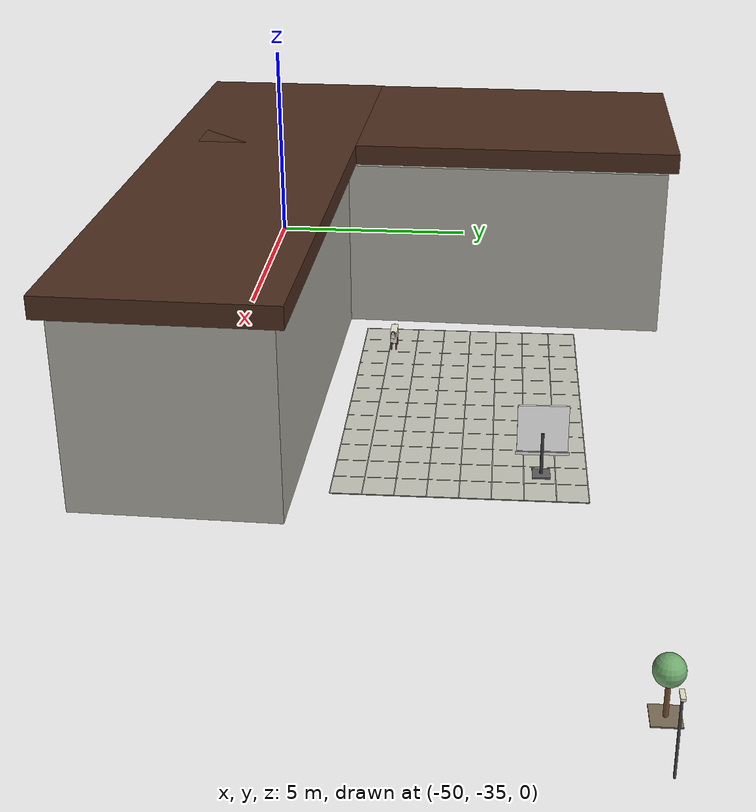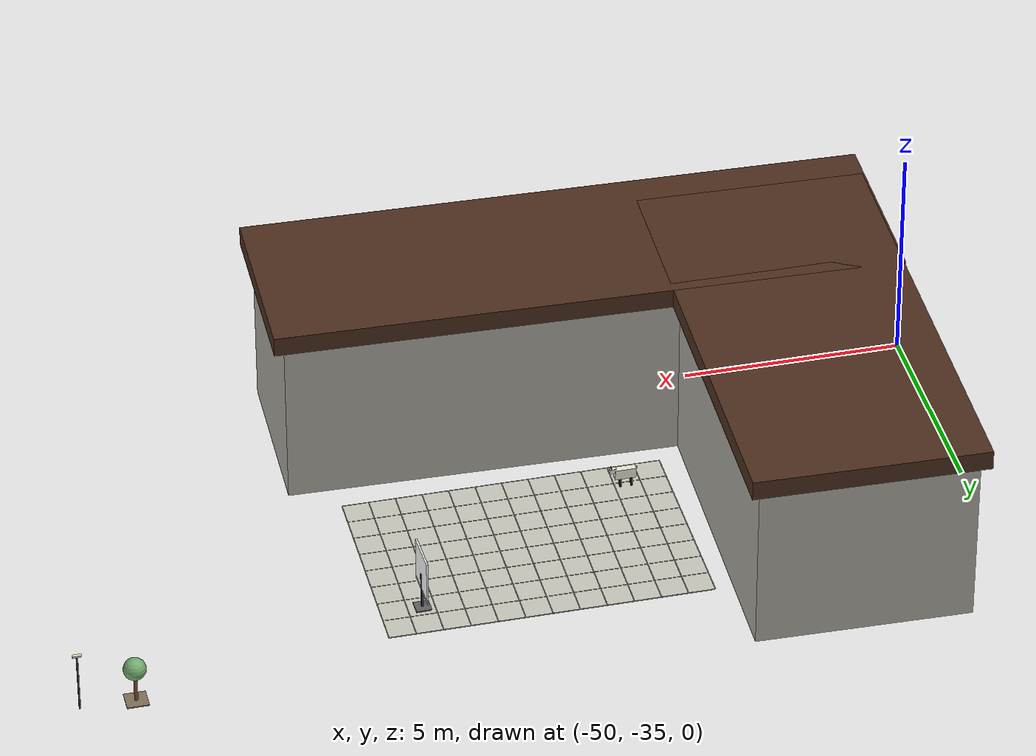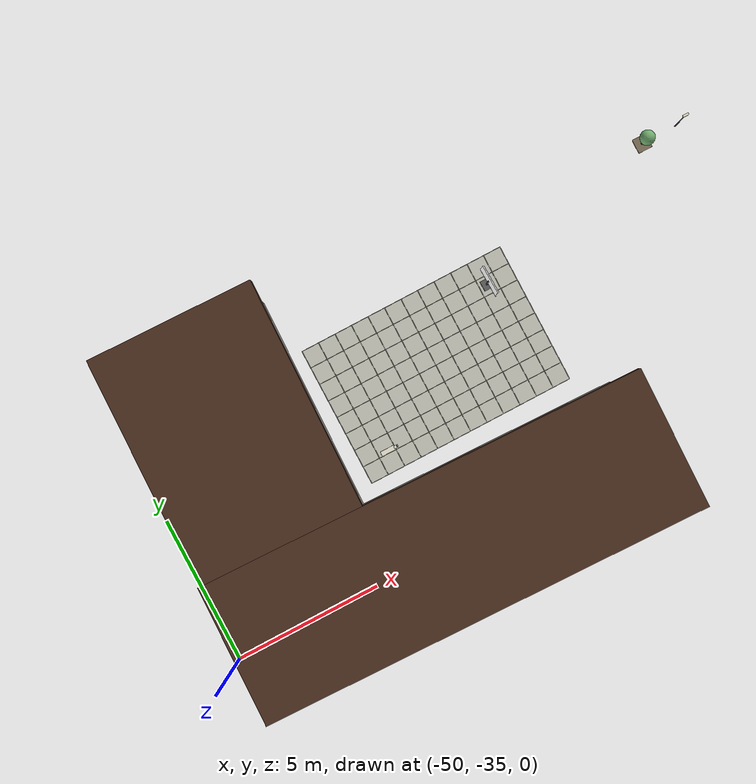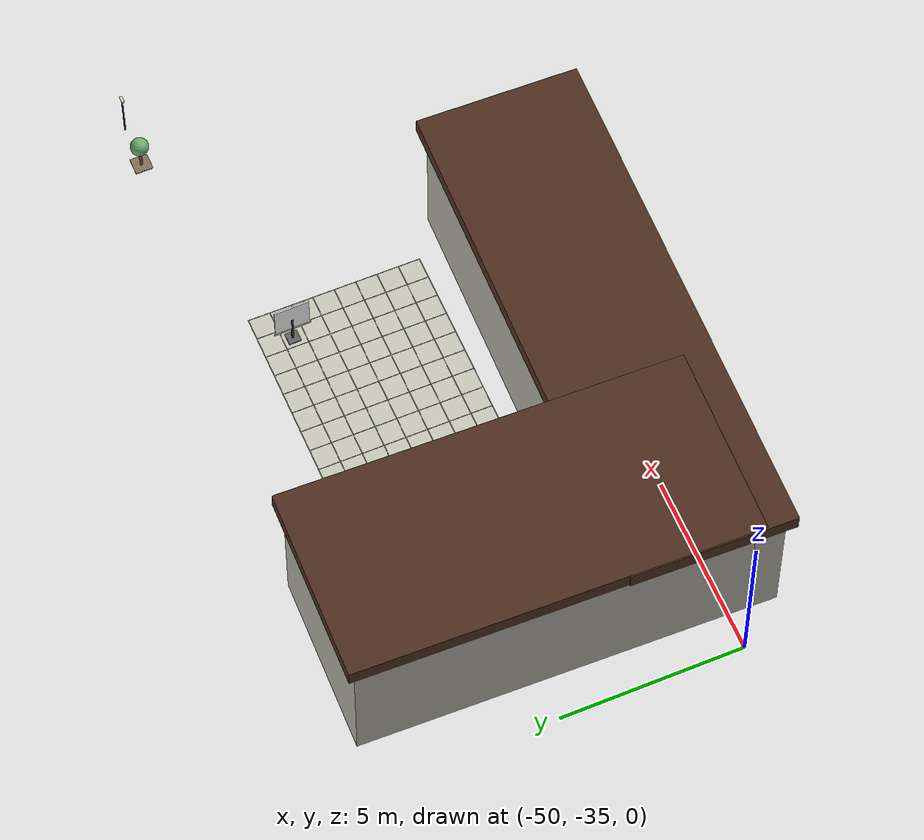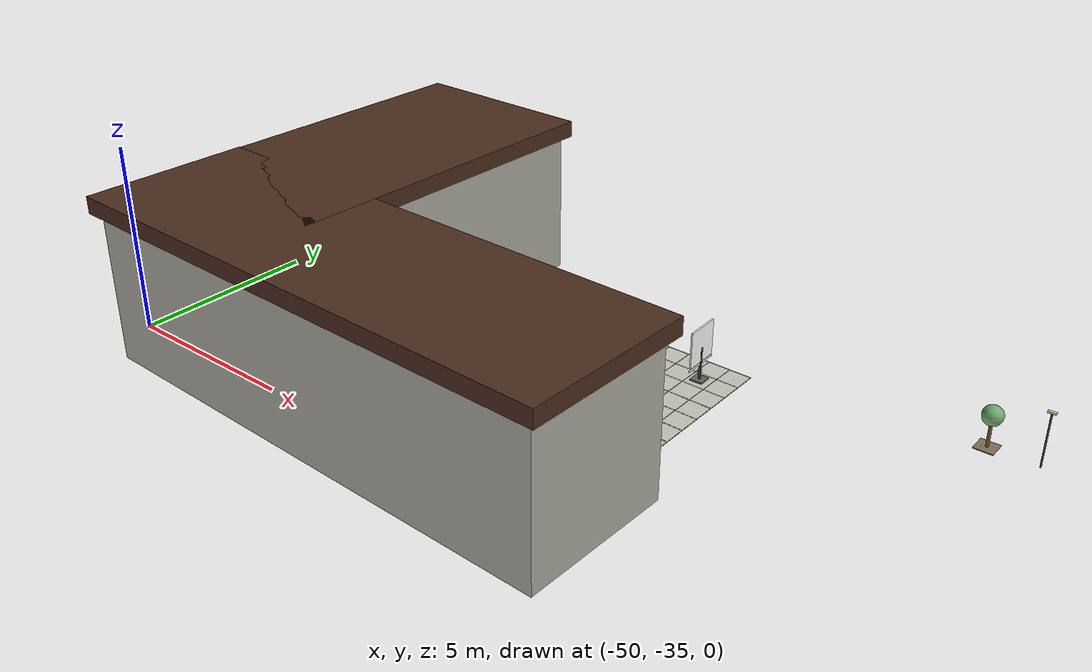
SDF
<sdf version="1.10">
 <world name="city">
  <model name="dock_pad">
   <static>true</static>
   <pose>-40 -29.6 0 0 0 0</pose>
   <link name="link">
    <collision name="plaza_col">
     <pose>0 0 0.008 0 0 0</pose>
     <geometry><box><size>7.2 4.8 0.016</size></box></geometry>
    </collision>
    <visual name="plaza_vis">
     <pose>0 0 0.008 0 0 0</pose>
     <geometry><box><size>7.2 4.8 0.016</size></box></geometry>
     <material>
      <ambient>0.779999971 0.779999971 0.730000019 1</ambient>
      <diffuse>0.779999971 0.779999971 0.730000019 1</diffuse>
      <specular>0.0799999982 0.0799999982 0.0799999982 1</specular>
     </material>
    </visual>
    <visual name="gx0">
     <pose>-3.6 0 0.0164 0 0 0</pose>
     <geometry><box><size>0.016 4.8 0.002</size></box></geometry>
     <material>
      <ambient>0.639999986 0.639999986 0.600000024 1</ambient>
      <diffuse>0.639999986 0.639999986 0.600000024 1</diffuse>
      <specular>0.0799999982 0.0799999982 0.0799999982 1</specular>
     </material>
    </visual>
    <visual name="gx1">
     <pose>-3 0 0.0164 0 0 0</pose>
     <geometry><box><size>0.016 4.8 0.002</size></box></geometry>
     <material>
      <ambient>0.639999986 0.639999986 0.600000024 1</ambient>
      <diffuse>0.639999986 0.639999986 0.600000024 1</diffuse>
      <specular>0.0799999982 0.0799999982 0.0799999982 1</specular>
     </material>
    </visual>
    <visual name="gx2">
     <pose>-2.4 0 0.0164 0 0 0</pose>
     <geometry><box><size>0.016 4.8 0.002</size></box></geometry>
     <material>
      <ambient>0.639999986 0.639999986 0.600000024 1</ambient>
      <diffuse>0.639999986 0.639999986 0.600000024 1</diffuse>
      <specular>0.0799999982 0.0799999982 0.0799999982 1</specular>
     </material>
    </visual>
    <visual name="gx3">
     <pose>-1.8 0 0.0164 0 0 0</pose>
     <geometry><box><size>0.016 4.8 0.002</size></box></geometry>
     <material>
      <ambient>0.639999986 0.639999986 0.600000024 1</ambient>
      <diffuse>0.639999986 0.639999986 0.600000024 1</diffuse>
      <specular>0.0799999982 0.0799999982 0.0799999982 1</specular>
     </material>
    </visual>
    <visual name="gx4">
     <pose>-1.2 0 0.0164 0 0 0</pose>
     <geometry><box><size>0.016 4.8 0.002</size></box></geometry>
     <material>
      <ambient>0.639999986 0.639999986 0.600000024 1</ambient>
      <diffuse>0.639999986 0.639999986 0.600000024 1</diffuse>
      <specular>0.0799999982 0.0799999982 0.0799999982 1</specular>
     </material>
    </visual>
    <visual name="gx5">
     <pose>-0.6 0 0.0164 0 0 0</pose>
     <geometry><box><size>0.016 4.8 0.002</size></box></geometry>
     <material>
      <ambient>0.639999986 0.639999986 0.600000024 1</ambient>
      <diffuse>0.639999986 0.639999986 0.600000024 1</diffuse>
      <specular>0.0799999982 0.0799999982 0.0799999982 1</specular>
     </material>
    </visual>
    <visual name="gx6">
     <pose>0 0 0.0164 0 0 0</pose>
     <geometry><box><size>0.016 4.8 0.002</size></box></geometry>
     <material>
      <ambient>0.639999986 0.639999986 0.600000024 1</ambient>
      <diffuse>0.639999986 0.639999986 0.600000024 1</diffuse>
      <specular>0.0799999982 0.0799999982 0.0799999982 1</specular>
     </material>
    </visual>
    <visual name="gx7">
     <pose>0.6 0 0.0164 0 0 0</pose>
     <geometry><box><size>0.016 4.8 0.002</size></box></geometry>
     <material>
      <ambient>0.639999986 0.639999986 0.600000024 1</ambient>
      <diffuse>0.639999986 0.639999986 0.600000024 1</diffuse>
      <specular>0.0799999982 0.0799999982 0.0799999982 1</specular>
     </material>
    </visual>
    <visual name="gx8">
     <pose>1.2 0 0.0164 0 0 0</pose>
     <geometry><box><size>0.016 4.8 0.002</size></box></geometry>
     <material>
      <ambient>0.639999986 0.639999986 0.600000024 1</ambient>
      <diffuse>0.639999986 0.639999986 0.600000024 1</diffuse>
      <specular>0.0799999982 0.0799999982 0.0799999982 1</specular>
     </material>
    </visual>
    <visual name="gx9">
     <pose>1.8 0 0.0164 0 0 0</pose>
     <geometry><box><size>0.016 4.8 0.002</size></box></geometry>
     <material>
      <ambient>0.639999986 0.639999986 0.600000024 1</ambient>
      <diffuse>0.639999986 0.639999986 0.600000024 1</diffuse>
      <specular>0.0799999982 0.0799999982 0.0799999982 1</specular>
     </material>
    </visual>
    <visual name="gx10">
     <pose>2.4 0 0.0164 0 0 0</pose>
     <geometry><box><size>0.016 4.8 0.002</size></box></geometry>
     <material>
      <ambient>0.639999986 0.639999986 0.600000024 1</ambient>
      <diffuse>0.639999986 0.639999986 0.600000024 1</diffuse>
      <specular>0.0799999982 0.0799999982 0.0799999982 1</specular>
     </material>
    </visual>
    <visual name="gx11">
     <pose>3 0 0.0164 0 0 0</pose>
     <geometry><box><size>0.016 4.8 0.002</size></box></geometry>
     <material>
      <ambient>0.639999986 0.639999986 0.600000024 1</ambient>
      <diffuse>0.639999986 0.639999986 0.600000024 1</diffuse>
      <specular>0.0799999982 0.0799999982 0.0799999982 1</specular>
     </material>
    </visual>
    <visual name="gx12">
     <pose>3.6 0 0.0164 0 0 0</pose>
     <geometry><box><size>0.016 4.8 0.002</size></box></geometry>
     <material>
      <ambient>0.639999986 0.639999986 0.600000024 1</ambient>
      <diffuse>0.639999986 0.639999986 0.600000024 1</diffuse>
      <specular>0.0799999982 0.0799999982 0.0799999982 1</specular>
     </material>
    </visual>
    <visual name="gy0">
     <pose>0 -2.4 0.0164 0 0 0</pose>
     <geometry><box><size>7.2 0.016 0.002</size></box></geometry>
     <material>
      <ambient>0.639999986 0.639999986 0.600000024 1</ambient>
      <diffuse>0.639999986 0.639999986 0.600000024 1</diffuse>
      <specular>0.0799999982 0.0799999982 0.0799999982 1</specular>
     </material>
    </visual>
    <visual name="gy1">
     <pose>0 -1.8 0.0164 0 0 0</pose>
     <geometry><box><size>7.2 0.016 0.002</size></box></geometry>
     <material>
      <ambient>0.639999986 0.639999986 0.600000024 1</ambient>
      <diffuse>0.639999986 0.639999986 0.600000024 1</diffuse>
      <specular>0.0799999982 0.0799999982 0.0799999982 1</specular>
     </material>
    </visual>
    <visual name="gy2">
     <pose>0 -1.2 0.0164 0 0 0</pose>
     <geometry><box><size>7.2 0.016 0.002</size></box></geometry>
     <material>
      <ambient>0.639999986 0.639999986 0.600000024 1</ambient>
      <diffuse>0.639999986 0.639999986 0.600000024 1</diffuse>
      <specular>0.0799999982 0.0799999982 0.0799999982 1</specular>
     </material>
    </visual>
    <visual name="gy3">
     <pose>0 -0.6 0.0164 0 0 0</pose>
     <geometry><box><size>7.2 0.016 0.002</size></box></geometry>
     <material>
      <ambient>0.639999986 0.639999986 0.600000024 1</ambient>
      <diffuse>0.639999986 0.639999986 0.600000024 1</diffuse>
      <specular>0.0799999982 0.0799999982 0.0799999982 1</specular>
     </material>
    </visual>
    <visual name="gy4">
     <pose>0 0 0.0164 0 0 0</pose>
     <geometry><box><size>7.2 0.016 0.002</size></box></geometry>
     <material>
      <ambient>0.639999986 0.639999986 0.600000024 1</ambient>
      <diffuse>0.639999986 0.639999986 0.600000024 1</diffuse>
      <specular>0.0799999982 0.0799999982 0.0799999982 1</specular>
     </material>
    </visual>
    <visual name="gy5">
     <pose>0 0.6 0.0164 0 0 0</pose>
     <geometry><box><size>7.2 0.016 0.002</size></box></geometry>
     <material>
      <ambient>0.639999986 0.639999986 0.600000024 1</ambient>
      <diffuse>0.639999986 0.639999986 0.600000024 1</diffuse>
      <specular>0.0799999982 0.0799999982 0.0799999982 1</specular>
     </material>
    </visual>
    <visual name="gy6">
     <pose>0 1.2 0.0164 0 0 0</pose>
     <geometry><box><size>7.2 0.016 0.002</size></box></geometry>
     <material>
      <ambient>0.639999986 0.639999986 0.600000024 1</ambient>
      <diffuse>0.639999986 0.639999986 0.600000024 1</diffuse>
      <specular>0.0799999982 0.0799999982 0.0799999982 1</specular>
     </material>
    </visual>
    <visual name="gy7">
     <pose>0 1.8 0.0164 0 0 0</pose>
     <geometry><box><size>7.2 0.016 0.002</size></box></geometry>
     <material>
      <ambient>0.639999986 0.639999986 0.600000024 1</ambient>
      <diffuse>0.639999986 0.639999986 0.600000024 1</diffuse>
      <specular>0.0799999982 0.0799999982 0.0799999982 1</specular>
     </material>
    </visual>
    <visual name="gy8">
     <pose>0 2.4 0.0164 0 0 0</pose>
     <geometry><box><size>7.2 0.016 0.002</size></box></geometry>
     <material>
      <ambient>0.639999986 0.639999986 0.600000024 1</ambient>
      <diffuse>0.639999986 0.639999986 0.600000024 1</diffuse>
      <specular>0.0799999982 0.0799999982 0.0799999982 1</specular>
     </material>
    </visual>
    <inertial>
     <mass>1</mass>
     <inertia><ixx>1</ixx><ixy>0</ixy><ixz>0</ixz><iyy>1</iyy><iyz>0</iyz><izz>1</izz></inertia>
    </inertial>
   </link>
  </model>
  <model name="tree_0">
   <static>true</static>
   <pose>-45.1554290771484 -26.4 0 0 0 0</pose>
   <link name="link">
    <collision name="soil_col">
     <pose>0 0 0.012 0 0 0</pose>
     <geometry><box><size>0.48 0.48 0.024</size></box></geometry>
    </collision>
    <visual name="soil_vis">
     <pose>0 0 0.012 0 0 0</pose>
     <geometry><box><size>0.48 0.48 0.024</size></box></geometry>
     <material>
      <ambient>0.5 0.439999998 0.349999994 1</ambient>
      <diffuse>0.5 0.439999998 0.349999994 1</diffuse>
      <specular>0.0799999982 0.0799999982 0.0799999982 1</specular>
     </material>
    </visual>
    <collision name="trunk_col">
     <pose>0 0 0.36 0 0 0</pose>
     <geometry><cylinder><radius>0.04</radius><length>0.72</length></cylinder></geometry>
    </collision>
    <visual name="trunk_vis">
     <pose>0 0 0.36 0 0 0</pose>
     <geometry><cylinder><radius>0.04</radius><length>0.72</length></cylinder></geometry>
     <material>
      <ambient>0.449999988 0.310000002 0.180000007 1</ambient>
      <diffuse>0.449999988 0.310000002 0.180000007 1</diffuse>
      <specular>0.0799999982 0.0799999982 0.0799999982 1</specular>
     </material>
    </visual>
    <visual name="crown_vis">
     <pose>0 0 0.84 0 0 0</pose>
     <geometry><sphere><radius>0.248</radius></sphere></geometry>
     <material>
      <ambient>0.449999988 0.680000007 0.439999998 1</ambient>
      <diffuse>0.449999988 0.680000007 0.439999998 1</diffuse>
      <specular>0.0799999982 0.0799999982 0.0799999982 1</specular>
     </material>
    </visual>
    <inertial>
     <mass>1</mass>
     <inertia><ixx>1</ixx><ixy>0</ixy><ixz>0</ixz><iyy>1</iyy><iyz>0</iyz><izz>1</izz></inertia>
    </inertial>
   </link>
  </model>
  <model name="tree_1">
   <static>true</static>
   <pose>-30.8 -26.4 0 0 0 0</pose>
   <link name="link">
    <collision name="soil_col">
     <pose>0 0 0.012 0 0 0</pose>
     <geometry><box><size>0.48 0.48 0.024</size></box></geometry>
    </collision>
    <visual name="soil_vis">
     <pose>0 0 0.012 0 0 0</pose>
     <geometry><box><size>0.48 0.48 0.024</size></box></geometry>
     <material>
      <ambient>0.5 0.439999998 0.349999994 1</ambient>
      <diffuse>0.5 0.439999998 0.349999994 1</diffuse>
      <specular>0.0799999982 0.0799999982 0.0799999982 1</specular>
     </material>
    </visual>
    <collision name="trunk_col">
     <pose>0 0 0.36 0 0 0</pose>
     <geometry><cylinder><radius>0.04</radius><length>0.72</length></cylinder></geometry>
    </collision>
    <visual name="trunk_vis">
     <pose>0 0 0.36 0 0 0</pose>
     <geometry><cylinder><radius>0.04</radius><length>0.72</length></cylinder></geometry>
     <material>
      <ambient>0.449999988 0.310000002 0.180000007 1</ambient>
      <diffuse>0.449999988 0.310000002 0.180000007 1</diffuse>
      <specular>0.0799999982 0.0799999982 0.0799999982 1</specular>
     </material>
    </visual>
    <visual name="crown_vis">
     <pose>0 0 0.84 0 0 0</pose>
     <geometry><sphere><radius>0.248</radius></sphere></geometry>
     <material>
      <ambient>0.449999988 0.680000007 0.439999998 1</ambient>
      <diffuse>0.449999988 0.680000007 0.439999998 1</diffuse>
      <specular>0.0799999982 0.0799999982 0.0799999982 1</specular>
     </material>
    </visual>
    <inertial>
     <mass>1</mass>
     <inertia><ixx>1</ixx><ixy>0</ixy><ixz>0</ixz><iyy>1</iyy><iyz>0</iyz><izz>1</izz></inertia>
    </inertial>
   </link>
  </model>
  <model name="lamp_0">
   <static>true</static>
   <pose>-29.6 -26.4 0 0 0 0</pose>
   <link name="link">
    <collision name="pole_col">
     <pose>0 0 0.68 0 0 0</pose>
     <geometry><cylinder><radius>0.02</radius><length>1.36</length></cylinder></geometry>
    </collision>
    <visual name="pole_vis">
     <pose>0 0 0.68 0 0 0</pose>
     <geometry><cylinder><radius>0.02</radius><length>1.36</length></cylinder></geometry>
     <material>
      <ambient>0.25 0.25 0.270000011 1</ambient>
      <diffuse>0.25 0.25 0.270000011 1</diffuse>
      <specular>0.0799999982 0.0799999982 0.0799999982 1</specular>
     </material>
    </visual>
    <visual name="head_vis">
     <pose>0 0 1.408 0 0 0</pose>
     <geometry><box><size>0.2 0.072 0.04</size></box></geometry>
     <material>
      <ambient>0.920000017 0.910000026 0.779999971 1</ambient>
      <diffuse>0.920000017 0.910000026 0.779999971 1</diffuse>
      <specular>0.0799999982 0.0799999982 0.0799999982 1</specular>
     </material>
    </visual>
    <inertial>
     <mass>1</mass>
     <inertia><ixx>1</ixx><ixy>0</ixy><ixz>0</ixz><iyy>1</iyy><iyz>0</iyz><izz>1</izz></inertia>
    </inertial>
   </link>
  </model>
  <model name="dock_qr_sign">
   <static>true</static>
   <pose>-37.3294403076172 -28.0697082519531 0 0 0 -1.54531997472983</pose>
   <link name="link">
    <collision name="post_col">
     <pose>0 0 0.46 0 0 0</pose>
     <geometry><box><size>0.056 0.056 0.92</size></box></geometry>
    </collision>
    <visual name="post_vis">
     <pose>0 0 0.46 0 0 0</pose>
     <geometry><box><size>0.056 0.056 0.92</size></box></geometry>
     <material>
      <ambient>0.239999995 0.239999995 0.239999995 1</ambient>
      <diffuse>0.239999995 0.239999995 0.239999995 1</diffuse>
      <specular>0.0799999982 0.0799999982 0.0799999982 1</specular>
     </material>
    </visual>
    <collision name="base_col">
     <pose>0 0 0.024 0 0 0</pose>
     <geometry><box><size>0.34 0.34 0.048</size></box></geometry>
    </collision>
    <visual name="base_vis">
     <pose>0 0 0.024 0 0 0</pose>
     <geometry><box><size>0.34 0.34 0.048</size></box></geometry>
     <material>
      <ambient>0.379999995 0.379999995 0.379999995 1</ambient>
      <diffuse>0.379999995 0.379999995 0.379999995 1</diffuse>
      <specular>0.0799999982 0.0799999982 0.0799999982 1</specular>
     </material>
    </visual>
    <visual name="back_vis">
     <pose>0 0 0.48 0 0 0</pose>
     <geometry><box><size>1.02 0.024 0.06</size></box></geometry>
     <material>
      <ambient>0.920000017 0.920000017 0.920000017 1</ambient>
      <diffuse>0.920000017 0.920000017 0.920000017 1</diffuse>
      <specular>0.0500000007 0.0500000007 0.0500000007 1</specular>
     </material>
    </visual>
    <visual name="qr_vis">
     <pose>0 0 1.02 0 0 0</pose>
     <geometry><box><size>0.96 0.04 0.96</size></box></geometry>
     <material>
      <ambient>1 1 1 1</ambient>
      <diffuse>1 1 1 1</diffuse>
      <specular>0.0500000007 0.0500000007 0.0500000007 1</specular>
      <pbr><metal><metalness>0.0</metalness><roughness>1.0</roughness></metal></pbr>
     </material>
    </visual>
    <inertial>
     <mass>1</mass>
     <inertia><ixx>1</ixx><ixy>0</ixy><ixz>0</ixz><iyy>1</iyy><iyz>0</iyz><izz>1</izz></inertia>
    </inertial>
   </link>
  </model>
  <model name="gallery_goat_placeholder_1_5">
   <static>true</static>
   <pose>-42.6343487888994 -31.3023465040246 0 0 0 0</pose>
   <link name="goat">
    <collision name="body_collision">
     <pose>0 0 0.36 0 0 0</pose>
     <geometry><box><size>0.48 0.152 0.24</size></box></geometry>
    </collision>
    <collision name="head_collision">
     <pose>0.28 0 0.448 0 0 0</pose>
     <geometry><box><size>0.14 0.088 0.112</size></box></geometry>
    </collision>
    <collision name="leg1_collision">
     <pose>-0.14 0.052 0.152 0 0 0</pose>
     <geometry><cylinder><radius>0.02</radius><length>0.304</length></cylinder></geometry>
    </collision>
    <collision name="leg2_collision">
     <pose>-0.14 -0.052 0.152 0 0 0</pose>
     <geometry><cylinder><radius>0.02</radius><length>0.304</length></cylinder></geometry>
    </collision>
    <collision name="leg3_collision">
     <pose>0.112 0.052 0.152 0 0 0</pose>
     <geometry><cylinder><radius>0.02</radius><length>0.304</length></cylinder></geometry>
    </collision>
    <collision name="leg4_collision">
     <pose>0.112 -0.052 0.152 0 0 0</pose>
     <geometry><cylinder><radius>0.02</radius><length>0.304</length></cylinder></geometry>
    </collision>
    <visual name="body_visual">
     <pose>0 0 0.36 0 0 0</pose>
     <geometry><box><size>0.48 0.152 0.24</size></box></geometry>
     <material>
      <ambient>0.930000007 0.910000026 0.839999974 1</ambient>
      <diffuse>0.930000007 0.910000026 0.839999974 1</diffuse>
      <specular>0.0500000007 0.0500000007 0.0500000007 1</specular>
     </material>
    </visual>
    <visual name="head_visual">
     <pose>0.28 0 0.448 0 0 0</pose>
     <geometry><box><size>0.14 0.088 0.112</size></box></geometry>
     <material>
      <ambient>0.930000007 0.910000026 0.839999974 1</ambient>
      <diffuse>0.930000007 0.910000026 0.839999974 1</diffuse>
      <specular>0.0500000007 0.0500000007 0.0500000007 1</specular>
     </material>
    </visual>
    <visual name="leg1_visual">
     <pose>-0.14 0.052 0.152 0 0 0</pose>
     <geometry><cylinder><radius>0.02</radius><length>0.304</length></cylinder></geometry>
     <material>
      <ambient>0.349999994 0.270000011 0.180000007 1</ambient>
      <diffuse>0.349999994 0.270000011 0.180000007 1</diffuse>
     </material>
    </visual>
    <visual name="leg2_visual">
     <pose>-0.14 -0.052 0.152 0 0 0</pose>
     <geometry><cylinder><radius>0.02</radius><length>0.304</length></cylinder></geometry>
     <material>
      <ambient>0.349999994 0.270000011 0.180000007 1</ambient>
      <diffuse>0.349999994 0.270000011 0.180000007 1</diffuse>
     </material>
    </visual>
    <visual name="leg3_visual">
     <pose>0.112 0.052 0.152 0 0 0</pose>
     <geometry><cylinder><radius>0.02</radius><length>0.304</length></cylinder></geometry>
     <material>
      <ambient>0.349999994 0.270000011 0.180000007 1</ambient>
      <diffuse>0.349999994 0.270000011 0.180000007 1</diffuse>
     </material>
    </visual>
    <visual name="leg4_visual">
     <pose>0.112 -0.052 0.152 0 0 0</pose>
     <geometry><cylinder><radius>0.02</radius><length>0.304</length></cylinder></geometry>
     <material>
      <ambient>0.349999994 0.270000011 0.180000007 1</ambient>
      <diffuse>0.349999994 0.270000011 0.180000007 1</diffuse>
     </material>
    </visual>
    <visual name="horn_left">
     <pose>0.312 0.028 0.516 0.35 0 0.25</pose>
     <geometry><cylinder><radius>0.01</radius><length>0.08</length></cylinder></geometry>
     <material>
      <ambient>0.300000012 0.230000004 0.170000002 1</ambient>
      <diffuse>0.300000012 0.230000004 0.170000002 1</diffuse>
     </material>
    </visual>
    <visual name="horn_right">
     <pose>0.312 -0.028 0.516 -0.35 0 -0.25</pose>
     <geometry><cylinder><radius>0.01</radius><length>0.08</length></cylinder></geometry>
     <material>
      <ambient>0.300000012 0.230000004 0.170000002 1</ambient>
      <diffuse>0.300000012 0.230000004 0.170000002 1</diffuse>
     </material>
    </visual>
    <visual name="tail">
     <pose>-0.256 0 0.44 0 0 0.5</pose>
     <geometry><box><size>0.048 0.012 0.072</size></box></geometry>
     <material>
      <ambient>0.930000007 0.910000026 0.839999974 1</ambient>
      <diffuse>0.930000007 0.910000026 0.839999974 1</diffuse>
     </material>
    </visual>
    <inertial>
     <mass>1</mass>
     <inertia><ixx>1</ixx><ixy>0</ixy><ixz>0</ixz><iyy>1</iyy><iyz>0</iyz><izz>1</izz></inertia>
    </inertial>
   </link>
  </model>
  <model name="gallery_long_l_block_2_1">
   <static>true</static>
   <pose>-42.1917553420064 -34.5040791727331 0 0 0 3.11550000029671</pose>
   <link name="body">
    <collision name="leg_a_collision">
     <pose>0 0 1.92 0 0 0</pose>
     <geometry><box><size>13.6 4 3.84</size></box></geometry>
    </collision>
    <collision name="leg_b_collision">
     <pose>4.4 -4 1.92 0 0 0</pose>
     <geometry><box><size>4.8 10.4 3.84</size></box></geometry>
    </collision>
    <visual name="leg_a_visual">
     <pose>0 0 1.92 0 0 0</pose>
     <geometry><box><size>13.6 4 3.84</size></box></geometry>
     <material>
      <ambient>0.680000007 0.670000017 0.629999995 1</ambient>
      <diffuse>0.680000007 0.670000017 0.629999995 1</diffuse>
      <specular>0.0500000007 0.0500000007 0.0500000007 1</specular>
     </material>
    </visual>
    <visual name="leg_b_visual">
     <pose>4.4 -4 1.92 0 0 0</pose>
     <geometry><box><size>4.8 10.4 3.84</size></box></geometry>
     <material>
      <ambient>0.680000007 0.670000017 0.629999995 1</ambient>
      <diffuse>0.680000007 0.670000017 0.629999995 1</diffuse>
      <specular>0.0500000007 0.0500000007 0.0500000007 1</specular>
     </material>
    </visual>
    <visual name="roof_a">
     <pose>0 0 4.16 0 0 0</pose>
     <geometry><box><size>14.08 4.4 0.44</size></box></geometry>
     <material>
      <ambient>0.300000012 0.180000007 0.119999997 1</ambient>
      <diffuse>0.300000012 0.180000007 0.119999997 1</diffuse>
      <specular>0.0399999991 0.0399999991 0.0399999991 1</specular>
     </material>
    </visual>
    <visual name="roof_b">
     <pose>4.4 -4 4.16 0 0 0</pose>
     <geometry><box><size>5.2 10.8 0.44</size></box></geometry>
     <material>
      <ambient>0.300000012 0.180000007 0.119999997 1</ambient>
      <diffuse>0.300000012 0.180000007 0.119999997 1</diffuse>
      <specular>0.0399999991 0.0399999991 0.0399999991 1</specular>
     </material>
    </visual>
    <inertial>
     <mass>1</mass>
     <inertia><ixx>1</ixx><ixy>0</ixy><ixz>0</ixz><iyy>1</iyy><iyz>0</iyz><izz>1</izz></inertia>
    </inertial>
   </link>
  </model>
 </world>
</sdf>
